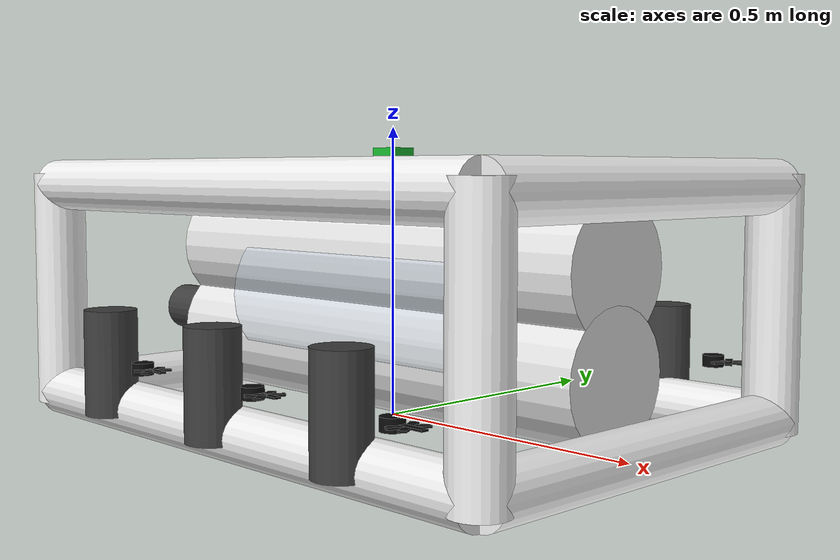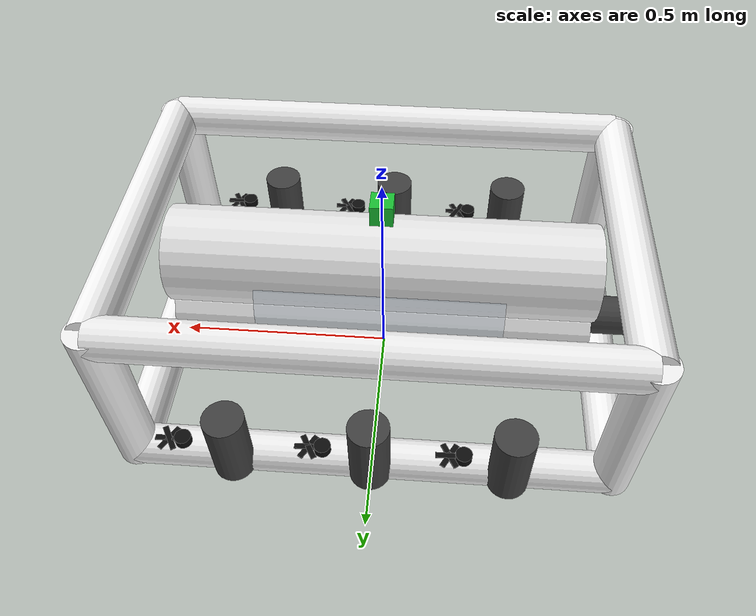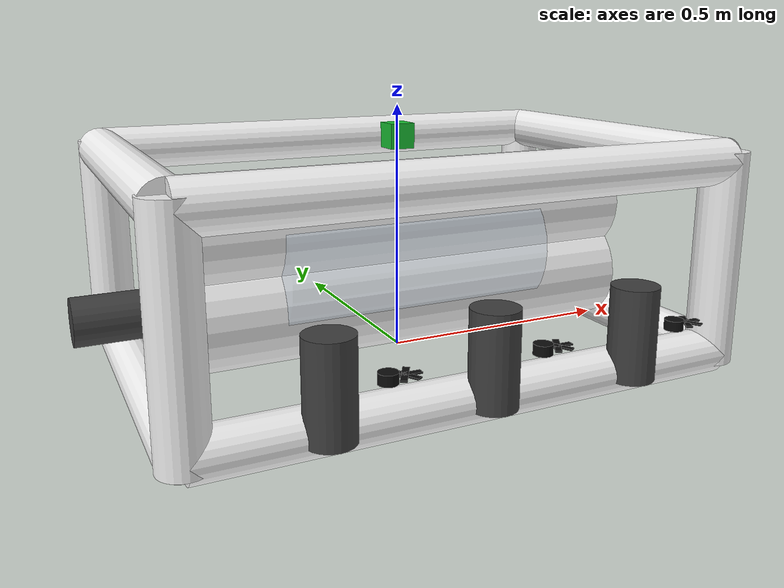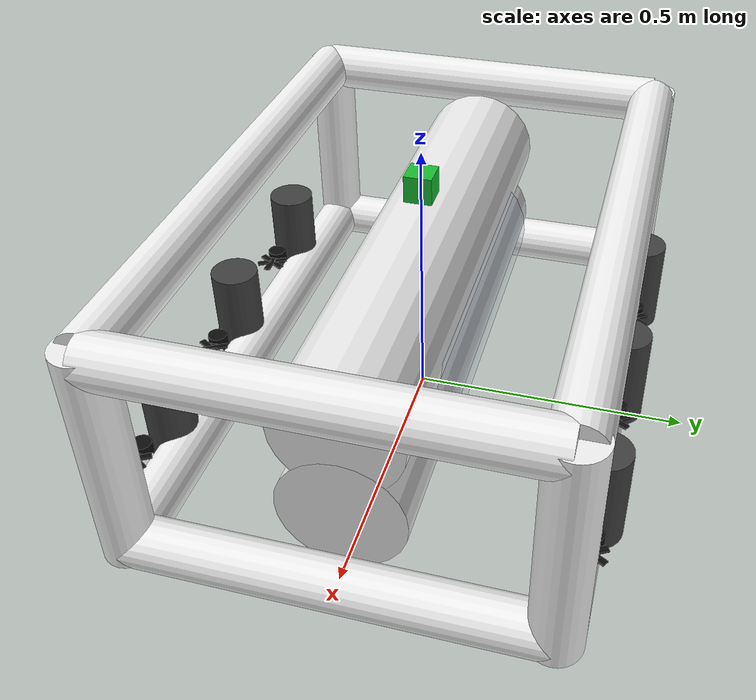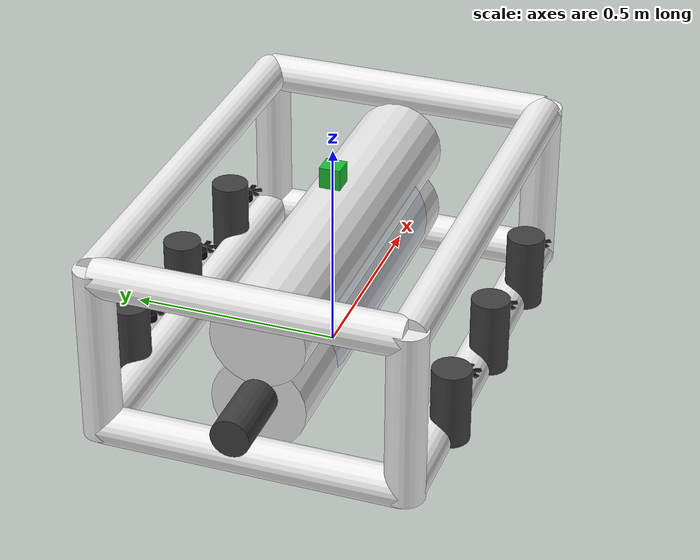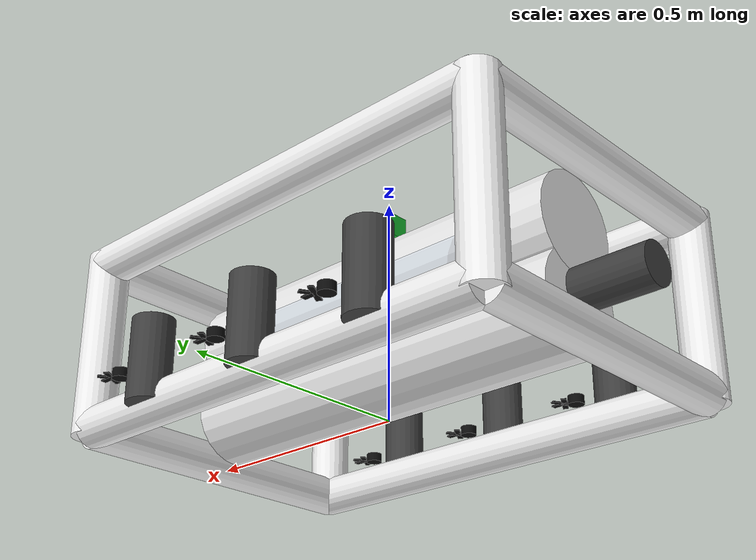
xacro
<?xml version="1.0"?>
<robot name="auv_proxy">

  <!-- =================
       BASE LINK (proxy body + frame)
       ================= -->
  <link name="base_link">
    <inertial>
      <mass value="25.0"/>
      <origin xyz="0 0 0.20" rpy="0 0 0"/>
      <inertia ixx="2.0" ixy="0" ixz="0" iyy="2.0" iyz="0" izz="2.0"/>
    </inertial>

    <!-- collision: simple box -->
    <collision>
      <origin xyz="0 0 0.20" rpy="0 0 0"/>
      <geometry>
        <box size="1.10 0.70 0.40"/>
      </geometry>
    </collision>

    <!-- ====== Center tubes (stacked) ====== -->
    <visual>
      <origin xyz="0 0 0.28" rpy="0 1.5708 0"/>
      <geometry><cylinder radius="0.11" length="0.95"/></geometry>
      <material name="tube"><color rgba="0.92 0.92 0.92 1"/></material>
    </visual>
    <visual>
      <origin xyz="0 0 0.12" rpy="0 1.5708 0"/>
      <geometry><cylinder radius="0.11" length="0.95"/></geometry>
      <material name="tube"/>
    </visual>

    <!-- Clear canister (middle) -->
    <visual>
      <origin xyz="0 0 0.20" rpy="0 1.5708 0"/>
      <geometry><cylinder radius="0.14" length="0.55"/></geometry>
      <material name="clear"><color rgba="0.75 0.85 0.95 0.25"/></material>
    </visual>

    <!-- ====== Perimeter rails (TOP rectangle: 4 rails) ======
         Rectangle dimensions: length_x=1.05, width_y=0.70
         Rails at z=0.40
    -->
    <!-- Top: front/back rails (along X) -->
    <visual>
      <origin xyz="0 0.35 0.40" rpy="0 1.5708 0"/>
      <geometry><cylinder radius="0.045" length="1.05"/></geometry>
      <material name="pvc"><color rgba="0.95 0.95 0.95 1"/></material>
    </visual>
    <visual>
      <origin xyz="0 -0.35 0.40" rpy="0 1.5708 0"/>
      <geometry><cylinder radius="0.045" length="1.05"/></geometry>
      <material name="pvc"/>
    </visual>
    <!-- Top: left/right rails (along Y) -->
    <visual>
      <origin xyz="0.525 0 0.40" rpy="1.5708 0 0"/>
      <geometry><cylinder radius="0.045" length="0.70"/></geometry>
      <material name="pvc"/>
    </visual>
    <visual>
      <origin xyz="-0.525 0 0.40" rpy="1.5708 0 0"/>
      <geometry><cylinder radius="0.045" length="0.70"/></geometry>
      <material name="pvc"/>
    </visual>

    <!-- ====== Perimeter rails (BOTTOM rectangle: 4 rails) ======
         Rails at z=0.02
    -->
    <!-- Bottom: front/back rails (along X) -->
    <visual>
      <origin xyz="0 0.35 0.02" rpy="0 1.5708 0"/>
      <geometry><cylinder radius="0.045" length="1.05"/></geometry>
      <material name="pvc"/>
    </visual>
    <visual>
      <origin xyz="0 -0.35 0.02" rpy="0 1.5708 0"/>
      <geometry><cylinder radius="0.045" length="1.05"/></geometry>
      <material name="pvc"/>
    </visual>
    <!-- Bottom: left/right rails (along Y) -->
    <visual>
      <origin xyz="0.525 0 0.02" rpy="1.5708 0 0"/>
      <geometry><cylinder radius="0.045" length="0.70"/></geometry>
      <material name="pvc"/>
    </visual>
    <visual>
      <origin xyz="-0.525 0 0.02" rpy="1.5708 0 0"/>
      <geometry><cylinder radius="0.045" length="0.70"/></geometry>
      <material name="pvc"/>
    </visual>

    <!-- Upright posts (4 corners) -->
    <visual><origin xyz="0.525 0.35 0.21" rpy="0 0 0"/><geometry><cylinder radius="0.045" length="0.42"/></geometry><material name="pvc"/></visual>
    <visual><origin xyz="0.525 -0.35 0.21" rpy="0 0 0"/><geometry><cylinder radius="0.045" length="0.42"/></geometry><material name="pvc"/></visual>
    <visual><origin xyz="-0.525 0.35 0.21" rpy="0 0 0"/><geometry><cylinder radius="0.045" length="0.42"/></geometry><material name="pvc"/></visual>
    <visual><origin xyz="-0.525 -0.35 0.21" rpy="0 0 0"/><geometry><cylinder radius="0.045" length="0.42"/></geometry><material name="pvc"/></visual>

  </link>

  <!-- =================
       CAMERA + IMU markers
       ================= -->
  <link name="camera_link">
    <visual>
      <origin xyz="0 0 0" rpy="0 0 0"/>
      <geometry><box size="0.08 0.08 0.06"/></geometry>
      <material name="cam"><color rgba="0.10 0.10 0.10 1"/></material>
    </visual>
    <inertial><mass value="0.1"/><origin xyz="0 0 0"/><inertia ixx="1e-4" ixy="0" ixz="0" iyy="1e-4" iyz="0" izz="1e-4"/></inertial>
  </link>
  <joint name="camera_joint" type="fixed">
    <parent link="base_link"/>
    <child link="camera_link"/>
    <origin xyz="0.40 0 0.26" rpy="0 0 0"/>
  </joint>

  <link name="imu_link">
    <visual>
      <origin xyz="0 0 0" rpy="0 0 0"/>
      <geometry><box size="0.05 0.05 0.05"/></geometry>
      <material name="imu"><color rgba="0.10 0.75 0.20 1"/></material>
    </visual>
    <inertial><mass value="0.05"/><origin xyz="0 0 0"/><inertia ixx="5e-5" ixy="0" ixz="0" iyy="5e-5" iyz="0" izz="5e-5"/></inertial>
  </link>
  <joint name="imu_joint" type="fixed">
    <parent link="base_link"/>
    <child link="imu_link"/>
    <origin xyz="0 0 0.44" rpy="0 0 0"/>
  </joint>

  <!-- =================
       THRUSTER BODY + SPINNING PROPELLER (no meshes)
       ================= -->
  <!-- Thruster body: cylinder. Propeller: hub + 3 blades, spinning on continuous joint. -->

  <!-- Macro-like pattern done manually 7 times for speed -->

  <!-- ===== LEFT 1 ===== -->
  <link name="thruster_L1_body">
    <visual>
      <origin xyz="0 0 0" rpy="0 0 1.5708"/>
      <geometry><cylinder radius="0.045" length="0.18"/></geometry>
      <material name="thr"><color rgba="0.25 0.25 0.25 1"/></material>
    </visual>
  </link>
  <joint name="thruster_L1_body_joint" type="fixed">
    <parent link="base_link"/><child link="thruster_L1_body"/>
    <origin xyz="0.30 0.38 0.10" rpy="0 0 0"/>
  </joint>

  <link name="prop_L1">
    <!-- hub -->
    <visual>
      <origin xyz="0 0 0" rpy="0 0 0"/>
      <geometry><cylinder radius="0.018" length="0.02"/></geometry>
      <material name="prop"><color rgba="0.05 0.05 0.05 1"/></material>
    </visual>
    <!-- 3 blades -->
    <visual><origin xyz="0.03 0 0" rpy="0 0 0"/><geometry><box size="0.06 0.012 0.003"/></geometry><material name="prop"/></visual>
    <visual><origin xyz="0.03 0 0" rpy="0 0 2.0944"/><geometry><box size="0.06 0.012 0.003"/></geometry><material name="prop"/></visual>
    <visual><origin xyz="0.03 0 0" rpy="0 0 4.1888"/><geometry><box size="0.06 0.012 0.003"/></geometry><material name="prop"/></visual>
  </link>
  <joint name="prop_L1_joint" type="continuous">
    <parent link="thruster_L1_body"/><child link="prop_L1"/>
    <origin xyz="0.10 0 0" rpy="0 0 0"/>
    <axis xyz="1 0 0"/>
  </joint>

  <!-- ===== LEFT 2 ===== -->
  <link name="thruster_L2_body"><visual><origin xyz="0 0 0" rpy="0 0 1.5708"/><geometry><cylinder radius="0.045" length="0.18"/></geometry><material name="thr"/></visual></link>
  <joint name="thruster_L2_body_joint" type="fixed"><parent link="base_link"/><child link="thruster_L2_body"/><origin xyz="0.00 0.38 0.10" rpy="0 0 0"/></joint>

  <link name="prop_L2">
    <visual><origin xyz="0 0 0"/><geometry><cylinder radius="0.018" length="0.02"/></geometry><material name="prop"/></visual>
    <visual><origin xyz="0.03 0 0" rpy="0 0 0"/><geometry><box size="0.06 0.012 0.003"/></geometry><material name="prop"/></visual>
    <visual><origin xyz="0.03 0 0" rpy="0 0 2.0944"/><geometry><box size="0.06 0.012 0.003"/></geometry><material name="prop"/></visual>
    <visual><origin xyz="0.03 0 0" rpy="0 0 4.1888"/><geometry><box size="0.06 0.012 0.003"/></geometry><material name="prop"/></visual>
  </link>
  <joint name="prop_L2_joint" type="continuous"><parent link="thruster_L2_body"/><child link="prop_L2"/><origin xyz="0.10 0 0"/><axis xyz="1 0 0"/></joint>

  <!-- ===== LEFT 3 ===== -->
  <link name="thruster_L3_body"><visual><origin xyz="0 0 0" rpy="0 0 1.5708"/><geometry><cylinder radius="0.045" length="0.18"/></geometry><material name="thr"/></visual></link>
  <joint name="thruster_L3_body_joint" type="fixed"><parent link="base_link"/><child link="thruster_L3_body"/><origin xyz="-0.30 0.38 0.10" rpy="0 0 0"/></joint>

  <link name="prop_L3">
    <visual><origin xyz="0 0 0"/><geometry><cylinder radius="0.018" length="0.02"/></geometry><material name="prop"/></visual>
    <visual><origin xyz="0.03 0 0" rpy="0 0 0"/><geometry><box size="0.06 0.012 0.003"/></geometry><material name="prop"/></visual>
    <visual><origin xyz="0.03 0 0" rpy="0 0 2.0944"/><geometry><box size="0.06 0.012 0.003"/></geometry><material name="prop"/></visual>
    <visual><origin xyz="0.03 0 0" rpy="0 0 4.1888"/><geometry><box size="0.06 0.012 0.003"/></geometry><material name="prop"/></visual>
  </link>
  <joint name="prop_L3_joint" type="continuous"><parent link="thruster_L3_body"/><child link="prop_L3"/><origin xyz="0.10 0 0"/><axis xyz="1 0 0"/></joint>

  <!-- ===== RIGHT 1 ===== -->
  <link name="thruster_R1_body"><visual><origin xyz="0 0 0" rpy="0 0 -1.5708"/><geometry><cylinder radius="0.045" length="0.18"/></geometry><material name="thr"/></visual></link>
  <joint name="thruster_R1_body_joint" type="fixed"><parent link="base_link"/><child link="thruster_R1_body"/><origin xyz="0.30 -0.38 0.10" rpy="0 0 0"/></joint>

  <link name="prop_R1">
    <visual><origin xyz="0 0 0"/><geometry><cylinder radius="0.018" length="0.02"/></geometry><material name="prop"/></visual>
    <visual><origin xyz="0.03 0 0" rpy="0 0 0"/><geometry><box size="0.06 0.012 0.003"/></geometry><material name="prop"/></visual>
    <visual><origin xyz="0.03 0 0" rpy="0 0 2.0944"/><geometry><box size="0.06 0.012 0.003"/></geometry><material name="prop"/></visual>
    <visual><origin xyz="0.03 0 0" rpy="0 0 4.1888"/><geometry><box size="0.06 0.012 0.003"/></geometry><material name="prop"/></visual>
  </link>
  <joint name="prop_R1_joint" type="continuous"><parent link="thruster_R1_body"/><child link="prop_R1"/><origin xyz="0.10 0 0"/><axis xyz="1 0 0"/></joint>

  <!-- ===== RIGHT 2 ===== -->
  <link name="thruster_R2_body"><visual><origin xyz="0 0 0" rpy="0 0 -1.5708"/><geometry><cylinder radius="0.045" length="0.18"/></geometry><material name="thr"/></visual></link>
  <joint name="thruster_R2_body_joint" type="fixed"><parent link="base_link"/><child link="thruster_R2_body"/><origin xyz="0.00 -0.38 0.10" rpy="0 0 0"/></joint>

  <link name="prop_R2">
    <visual><origin xyz="0 0 0"/><geometry><cylinder radius="0.018" length="0.02"/></geometry><material name="prop"/></visual>
    <visual><origin xyz="0.03 0 0" rpy="0 0 0"/><geometry><box size="0.06 0.012 0.003"/></geometry><material name="prop"/></visual>
    <visual><origin xyz="0.03 0 0" rpy="0 0 2.0944"/><geometry><box size="0.06 0.012 0.003"/></geometry><material name="prop"/></visual>
    <visual><origin xyz="0.03 0 0" rpy="0 0 4.1888"/><geometry><box size="0.06 0.012 0.003"/></geometry><material name="prop"/></visual>
  </link>
  <joint name="prop_R2_joint" type="continuous"><parent link="thruster_R2_body"/><child link="prop_R2"/><origin xyz="0.10 0 0"/><axis xyz="1 0 0"/></joint>

  <!-- ===== RIGHT 3 ===== -->
  <link name="thruster_R3_body"><visual><origin xyz="0 0 0" rpy="0 0 -1.5708"/><geometry><cylinder radius="0.045" length="0.18"/></geometry><material name="thr"/></visual></link>
  <joint name="thruster_R3_body_joint" type="fixed"><parent link="base_link"/><child link="thruster_R3_body"/><origin xyz="-0.30 -0.38 0.10" rpy="0 0 0"/></joint>

  <link name="prop_R3">
    <visual><origin xyz="0 0 0"/><geometry><cylinder radius="0.018" length="0.02"/></geometry><material name="prop"/></visual>
    <visual><origin xyz="0.03 0 0" rpy="0 0 0"/><geometry><box size="0.06 0.012 0.003"/></geometry><material name="prop"/></visual>
    <visual><origin xyz="0.03 0 0" rpy="0 0 2.0944"/><geometry><box size="0.06 0.012 0.003"/></geometry><material name="prop"/></visual>
    <visual><origin xyz="0.03 0 0" rpy="0 0 4.1888"/><geometry><box size="0.06 0.012 0.003"/></geometry><material name="prop"/></visual>
  </link>
  <joint name="prop_R3_joint" type="continuous"><parent link="thruster_R3_body"/><child link="prop_R3"/><origin xyz="0.10 0 0"/><axis xyz="1 0 0"/></joint>

  <!-- ===== BACK THRUSTER ===== -->
  <link name="thruster_back_body">
    <visual>
      <origin xyz="0 0 0" rpy="0 1.5708 0"/>
      <geometry><cylinder radius="0.045" length="0.18"/></geometry>
      <material name="thr"/>
    </visual>
  </link>
  <joint name="thruster_back_body_joint" type="fixed">
    <parent link="base_link"/><child link="thruster_back_body"/>
    <origin xyz="-0.55 0 0.14" rpy="0 0 0"/>
  </joint>

  <link name="prop_back">
    <visual><origin xyz="0 0 0"/><geometry><cylinder radius="0.018" length="0.02"/></geometry><material name="prop"/></visual>
    <visual><origin xyz="0.03 0 0" rpy="0 0 0"/><geometry><box size="0.06 0.012 0.003"/></geometry><material name="prop"/></visual>
    <visual><origin xyz="0.03 0 0" rpy="0 0 2.0944"/><geometry><box size="0.06 0.012 0.003"/></geometry><material name="prop"/></visual>
    <visual><origin xyz="0.03 0 0" rpy="0 0 4.1888"/><geometry><box size="0.06 0.012 0.003"/></geometry><material name="prop"/></visual>
  </link>
  <joint name="prop_back_joint" type="continuous">
    <parent link="thruster_back_body"/><child link="prop_back"/>
    <origin xyz="0.10 0 0" rpy="0 0 0"/>
    <axis xyz="1 0 0"/>
  </joint>

</robot>
